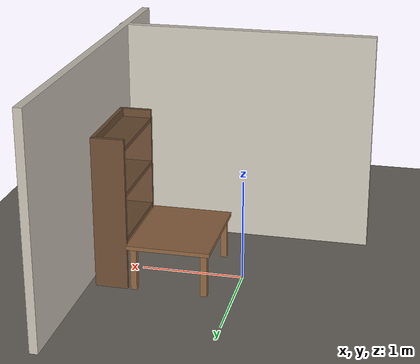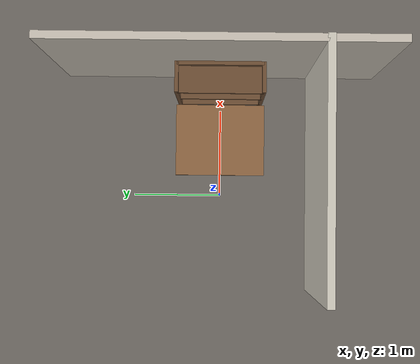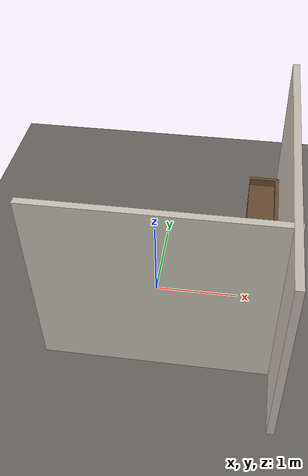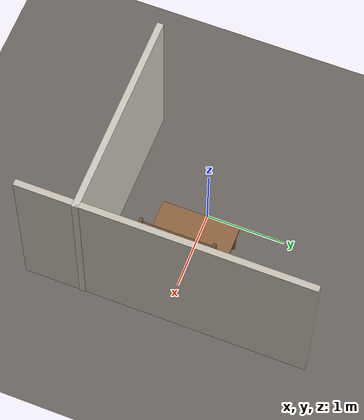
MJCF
<mujoco model="real_env_0_table_shelf">
  <compiler angle="radian" autolimits="true" boundmass="0" balanceinertia="true"/>
  <option impratio="10" gravity="0 0 -9.8" integrator="implicitfast" cone="elliptic" jacobian="sparse" noslip_iterations="4">
    <flag multiccd="enable" contact="enable" warmstart="enable"/>
  </option>
  <size njmax="8000" nconmax="8000"/>
  <visual><global offwidth="1280" offheight="720"/><map znear="0.001"/>
    <headlight ambient="0.42 0.42 0.42" diffuse="0.55 0.55 0.55"/></visual>
  <asset>
    <texture name="woodtex" type="2d" builtin="flat" rgb1="0.55 0.39 0.25" width="32" height="32"/>
    <material name="wood" texture="woodtex" reflectance="0.05"/>
    <texture name="wood2tex" type="2d" builtin="flat" rgb1="0.42 0.30 0.20" width="32" height="32"/>
    <material name="wood2" texture="wood2tex" reflectance="0.05"/>
    <texture name="floortex" type="2d" builtin="checker" rgb1="0.45 0.43 0.40" rgb2="0.38 0.36 0.34" width="300" height="300"/>
    <material name="floormat" texture="floortex" texrepeat="10 10" reflectance="0.05"/>
  </asset>
  <default>
    <default class="furniture">
      <geom contype="8" conaffinity="15" group="0" friction="0.9 0.9 0.001"
            solref="0.02 1" solimp="0.998 0.998 0.001" density="700" material="wood"/>
    </default>
    <default class="furniture2">
      <geom contype="8" conaffinity="15" group="0" friction="0.9 0.9 0.001"
            solref="0.02 1" solimp="0.998 0.998 0.001" density="700" material="wood2"/>
    </default>
  </default>
  <worldbody>
    <light pos="0.3 0.5 2.6" dir="0 0 -1" diffuse="0.65 0.65 0.65"/>
    <light pos="-0.8 -0.8 2.2" dir="0.3 0.3 -1" diffuse="0.3 0.3 0.3"/>
    <geom name="floor" type="plane" size="5 5 0.1" pos="0 0 0" material="floormat" contype="8" conaffinity="15"/>
    <geom name="table_top" type="box" pos="0.62 0 0.44" size="0.4 0.5 0.02" class="furniture"/>
    <geom name="table_leg0" type="box" pos="0.96 0.44 0.21" size="0.03 0.03 0.21" class="furniture"/>
    <geom name="table_leg1" type="box" pos="0.96 -0.44 0.21" size="0.03 0.03 0.21" class="furniture"/>
    <geom name="table_leg2" type="box" pos="0.27999999999999997 0.44 0.21" size="0.03 0.03 0.21" class="furniture"/>
    <geom name="table_leg3" type="box" pos="0.27999999999999997 -0.44 0.21" size="0.03 0.03 0.21" class="furniture"/>
    <geom name="wall_back" type="box" pos="1.45 0 1.1" size="0.04 1.8 1.1" contype="8" conaffinity="15" rgba="0.78 0.75 0.70 1"/>
    <geom name="wall_side" type="box" pos="0.2 -1.05 1.1" size="1.3 0.04 1.1" contype="8" conaffinity="15" rgba="0.80 0.78 0.73 1"/>
    <geom name="shelf_side_l" type="box" pos="1.18 0.45 0.75" size="0.16 0.02 0.75" class="furniture2"/>
    <geom name="shelf_side_r" type="box" pos="1.18 -0.45 0.75" size="0.16 0.02 0.75" class="furniture2"/>
    <geom name="shelf_b0" type="box" pos="1.18 0 0.5" size="0.16 0.45 0.02" class="furniture2"/>
    <geom name="shelf_b1" type="box" pos="1.18 0 0.95" size="0.16 0.45 0.02" class="furniture2"/>
    <geom name="shelf_b2" type="box" pos="1.18 0 1.4" size="0.16 0.45 0.02" class="furniture2"/>
    <geom name="shelf_back" type="box" pos="1.32 0 0.75" size="0.02 0.45 0.75" class="furniture2"/>
    <site name="target_spot" pos="0.5 0.0 0.46" size="0.01" rgba="0 0 0 0"/>
  </worldbody>
</mujoco>
